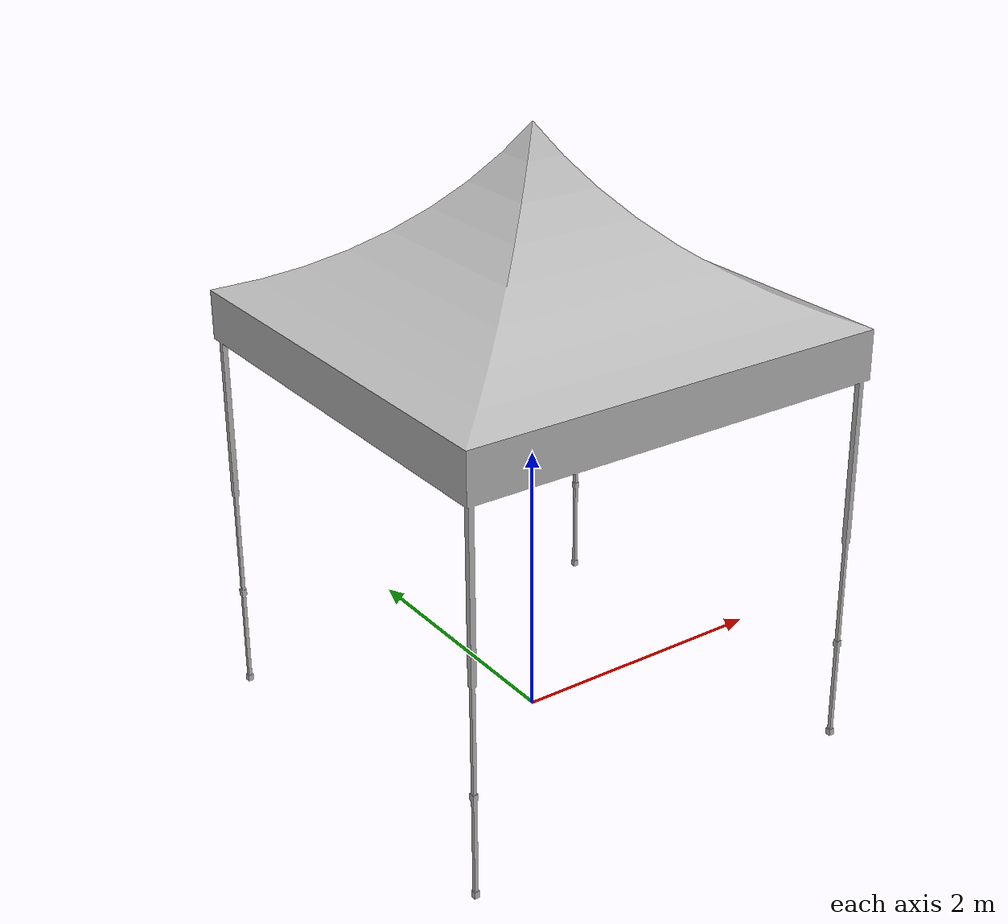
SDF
<?xml version="1.0" ?>
<sdf version="1.6">
  <model name="Canopy1">
    <static>true</static>
    <link name="link">

      <collision name="base_collision">
        <pose>0 0 1.5 0 0 0</pose>
        <geometry>
          <box>
            <size>3 3 3</size>
          </box>
        </geometry>
      </collision>

      <collision name="roof_collision">
        <pose>0 0 3.0 0 0 0</pose>
        <geometry>
          <sphere>
            <radius>1.5</radius>
          </sphere>
        </geometry>
      </collision>

      <visual name="visual">
        <pose degrees="true">0 0 2.2 0 0 0</pose>
        <geometry>
          <mesh>
            <scale>1 1 1</scale>
            <uri>meshes/canopy1.dae</uri>
          </mesh>
        </geometry>
      </visual>

    </link>
  </model>
</sdf>
